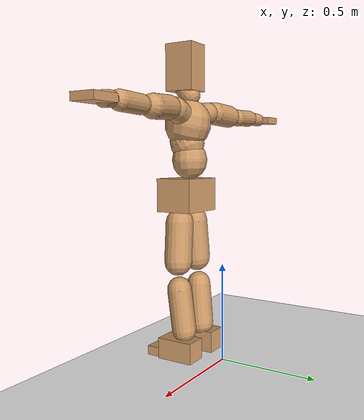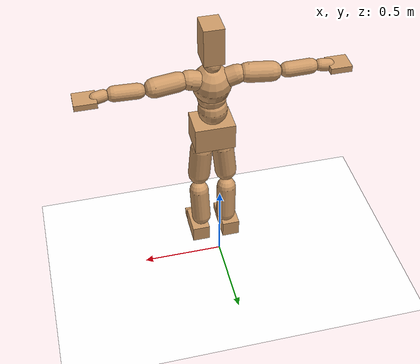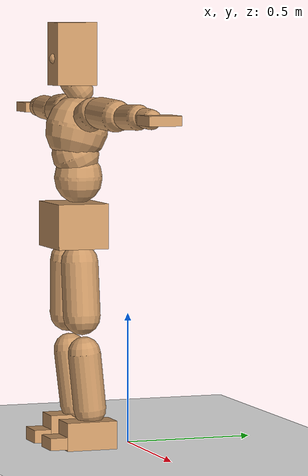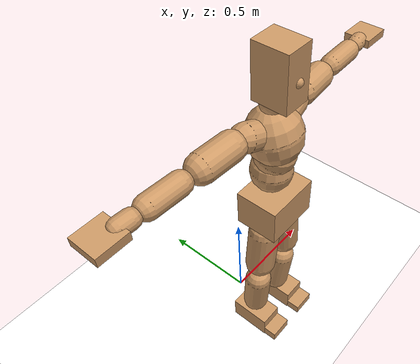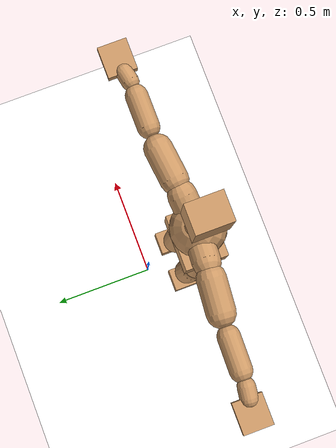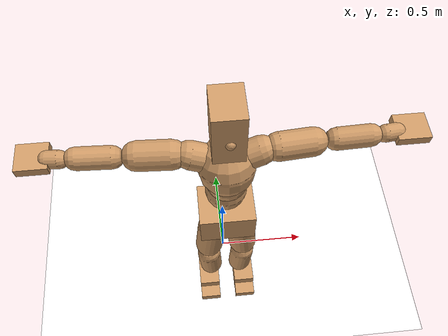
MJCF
<mujoco model="humanoid">
  <option integrator="implicitfast" />

  <visual>
    <global offwidth="1280" offheight="960" />
    <headlight active="1" ambient="0.34 0.34 0.34" diffuse="0.5 0.5 0.5" />
  </visual>

  <default>
    <joint damping="2" stiffness="2" armature="0.01" limited="true" solimplimit="0 .99 .01" />
    <geom condim="1" friction="0.7 0.005 0.0001" solimp=".99 .99 .003" solref="0.015 1" margin="0.001" rgba="0.8 0.6 .4 1" />
    <default class="smplcontact">
      <geom condim="3" friction="1. 0.005 0.0001" solref="0.015 1" solimp="0.98 0.98 0.001" priority="1" />
    </default>
    <default class="stiff_medium">
      <joint stiffness="10" />
    </default>
    <default class="stiff_medium_higher">
      <joint stiffness="50" />
    </default>
    <default class="stiff_high">
      <joint stiffness="100" />
    </default>
  </default>

  <asset>
    <texture type="skybox" builtin="gradient" rgb1="0.99 0.99 0.99" rgb2="0.608 0.828 0.892" width="100" />
    <texture builtin="flat" height="1278" mark="cross" markrgb="1 1 1" name="texgeom" random="0.01" rgb1="0.8 0.6 0.4" rgb2="0.8 0.6 0.4" type="cube" width="127" />
    <texture name="texplane" type="2d" builtin="checker" markrgb="1 1 1" rgb1="0.756 0.772 0.76" rgb2="0.6 0.6 0.6" width="100" height="100" />
    <material name="MatPlane" reflectance="0.5" texture="texplane" texrepeat="1 1" texuniform="true" />
    <material name="geom" texture="texgeom" texuniform="true" />
  </asset>

  <worldbody>
    <light name="tracking_light" pos="0 0 7" dir="0 0 -1" directional="true" cutoff="100" exponent="1" diffuse="1 1 1" specular="0.1 0.1 0.1" mode="trackcom" />
    <camera name="back" pos="0 3 2.4" xyaxes="-1 0 0 0 -1 2" mode="trackcom" />
    <camera name="side" pos="-3 0 2.4" xyaxes="0 -1 0 1 0 2" mode="trackcom" />
    <camera name="front_side" pos="-2.8 -2.8 0.8" xyaxes="0.5 -0.5 0 0.1 0.1 1" mode="trackcom" />
    <geom condim="3" name="floor" pos="0 0 0" rgba="1 1 1 1" size="100 100 .2" type="plane" material="MatPlane" />
    <body name="Pelvis" pos="-0.0018 -0.2233 0.860787" euler="90 0 0">
      <site name="Pelvis" size="0.01" />
      <freejoint name="Pelvis" />
      <geom type="box" pos="-0.0000 -0.0121 -0.0055" size="0.126944 0.0857375 0.0985625" quat="1.0000 0.0000 0.0000 0.0000" density="3165.830099" name="Pelvis" />
      <body name="L_Hip" pos="0.0629809 -0.0828267 -0.00616216">
        <joint name="L_Hip_x" type="hinge" pos="0 0 0" axis="1 0 0" stiffness="11.995178522727272" range="-160.0 22.92" class="stiff_medium" damping="17.430703691887974" armature="0.011257465030404834"/>
        <joint name="L_Hip_y" type="hinge" pos="0 0 0" axis="0 1 0" stiffness="12.049602727272726" range="-70.0 70.0" class="stiff_medium" damping="13.515289728835151" armature="0.015159259652679058"/>
        <joint name="L_Hip_z" type="hinge" pos="0 0 0" axis="0 0 1" stiffness="12.038328636363635" range="-28.65 90.0" class="stiff_medium" damping="11.63825229116524" armature="0.011251471901478795"/>
        <geom type="capsule" density="2040.816327" fromto="0.00625278 -0.067965 -0.00081558 0.0248299 -0.272041 -0.00326232" size="0.0711063" name="L_Hip" />
        <body name="L_Knee" pos="0.0310827 -0.340006 -0.0040779">
          <joint name="L_Knee_x" type="hinge" pos="0 0 0" axis="1 0 0" range="-5.16 171.89" damping="9.673337972976684" armature="0.011821301127185269" stiffness="2.473645522727273"/>
          <joint name="L_Knee_y" type="hinge" pos="0 0 0" axis="0 1 0" range="-4.58 6.88" damping="11.112441772459476" armature="0.015897338952544162" stiffness="2.4274180909090908"/>
          <joint name="L_Knee_z" type="hinge" pos="0 0 0" axis="0 0 1" range="-6.88 4.58" damping="9.685130975623936" armature="0.01179053693243861" stiffness="2.4861506136363634"/>
          <geom type="capsule" density="1234.567901" fromto="-0.00244674 -0.0721335 -0.00788394 -0.00987758 -0.288534 -0.031717" size="0.0625504" name="L_Knee" />
          <body name="L_Ankle" pos="-0.0123243 -0.360668 -0.0396009">
            <joint name="L_Ankle_x" type="hinge" pos="0 0 0" axis="1 0 0" range="-45.84 45.84" class="stiff_medium" damping="8.817713135362855" armature="0.015420084382844266" stiffness="14.006276022727274"/>
            <joint name="L_Ankle_y" type="hinge" pos="0 0 0" axis="0 1 0" range="-74.48 22.92" class="stiff_medium" damping="4.436645862224495" armature="0.015615081444014472" stiffness="14.00627875"/>
            <joint name="L_Ankle_z" type="hinge" pos="0 0 0" axis="0 0 1" range="-4.58 4.58" class="stiff_medium" damping="9.228883683598873" armature="0.016891681807180016" stiffness="14.006284772727273"/>
            <geom type="box" pos="0.0211145 -0.0216582 0.02193" size="0.0558445 0.0536477 0.098277" quat="1.0000 0.0000 0.0000 0.0000" density="449.071558" name="L_Ankle" class="smplcontact" />
            <body name="L_Toe" pos="0.0239237 -0.050566 0.10811">
              <joint name="L_Toe_x" type="hinge" pos="0 0 0" axis="1 0 0" range="-91.67 22.92" armature="0.01763187678403287" damping="3.1429738998598484" stiffness="2.801257363636364"/>
              <joint name="L_Toe_y" type="hinge" pos="0 0 0" axis="0 1 0" range="-4.58 4.58" armature="0.018526938829720452" damping="3.2217611931280334" stiffness="2.8012574772727277"/>
              <joint name="L_Toe_z" type="hinge" pos="0 0 0" axis="0 0 1" range="-4.58 4.58" armature="0.0203366935619891" damping="3.3754503561471756" stiffness="2.8012580000000002"/>
              <geom type="box" pos="-0.0027186 0.0049841 0.0224738" size="0.0552664 0.023124 0.0573475" quat="1.0000 0.0000 0.0000 0.0000" density="423.206892" name="L_Toe" class="smplcontact" />
            </body>
          </body>
        </body>
      </body>
      <body name="R_Hip" pos="-0.0613497 -0.0820111 -0.00389666">
        <joint name="R_Hip_x" type="hinge" pos="0 0 0" axis="1 0 0" stiffness="11.995178522727272" range="-160.0 22.92" class="stiff_medium" damping="17.430703691887974" armature="0.011257465030404834"/>
        <joint name="R_Hip_y" type="hinge" pos="0 0 0" axis="0 1 0" stiffness="12.049602727272726" range="-70.0 70.0" class="stiff_medium" damping="13.515289728835151" armature="0.015159259652679058"/>
        <joint name="R_Hip_z" type="hinge" pos="0 0 0" axis="0 0 1" stiffness="12.038328636363635" range="-90.0 28.65" class="stiff_medium" damping="11.63825229116524" armature="0.011251471901478795"/>
        <geom type="capsule" density="2040.816327" fromto="-0.00697774 -0.0693243 -0.00163116 -0.0277297 -0.277388 -0.00643402" size="0.0700657" name="R_Hip" />
        <body name="R_Knee" pos="-0.0347075 -0.346712 -0.00806518">
          <joint name="R_Knee_x" type="hinge" pos="0 0 0" axis="1 0 0" range="-5.16 171.89" damping="9.673337972976684" armature="0.011821301127185269" stiffness="2.473645522727273"/>
          <joint name="R_Knee_y" type="hinge" pos="0 0 0" axis="0 1 0" range="-6.88 4.58" damping="11.112441772459476" armature="0.015897338952544162" stiffness="2.4274180909090908"/>
          <joint name="R_Knee_z" type="hinge" pos="0 0 0" axis="0 0 1" range="-4.58 6.88" damping="9.685130975623936" armature="0.01179053693243861" stiffness="2.4861506136363634"/>
          <geom type="capsule" density="1234.567901" fromto="0.00289984 -0.0722241 -0.0077027 0.0114181 -0.288806 -0.0306296" size="0.0625504" name="R_Knee" />
          <body name="R_Ankle" pos="0.014318 -0.36103 -0.0383323">
            <joint name="R_Ankle_x" type="hinge" pos="0 0 0" axis="1 0 0" range="-45.84 45.84" class="stiff_medium" damping="8.817713135362855" armature="0.015420084382844266" stiffness="14.006276022727274"/>
            <joint name="R_Ankle_y" type="hinge" pos="0 0 0" axis="0 1 0" range="-22.92 74.48" class="stiff_medium" damping="4.436645862224495" armature="0.015615081444014472" stiffness="14.00627875"/>
            <joint name="R_Ankle_z" type="hinge" pos="0 0 0" axis="0 0 1" range="-4.58 4.58" class="stiff_medium" damping="9.228883683598873" armature="0.016891681807180016" stiffness="14.006284772727273"/>
            <geom type="box" pos="-0.0192114 -0.0157679 0.0231987" size="0.0558445 0.0552664 0.100011" quat="1.0000 0.0000 0.0000 0.0000" density="434.700981" name="R_Ankle" class="smplcontact" />
            <body name="R_Toe" pos="-0.0230175 -0.0435882 0.111734">
              <joint name="R_Toe_x" type="hinge" pos="0 0 0" axis="1 0 0" range="-91.67 22.92" armature="0.01763187678403287" damping="3.1429738998598484" stiffness="2.801257363636364"/>
              <joint name="R_Toe_y" type="hinge" pos="0 0 0" axis="0 1 0" range="-4.58 4.58" armature="0.018526938829720452" damping="3.2217611931280334" stiffness="2.8012574772727277"/>
              <joint name="R_Toe_z" type="hinge" pos="0 0 0" axis="0 0 1" range="-4.58 4.58" armature="0.0203366935619891" damping="3.3754503561471756" stiffness="2.8012580000000002"/>
              <geom type="box" pos="0.00380604 0.0040779 0.0205707" size="0.055382 0.0249739 0.0570007" quat="1.0000 0.0000 0.0000 0.0000" density="407.384095" name="R_Toe" class="smplcontact" />
            </body>
          </body>
        </body>
      </body>
      <body name="Torso" pos="-0.002375 0.10355 -0.025365">
        <joint name="Torso_x" type="hinge" pos="0 0 0" axis="1 0 0" range="-25.78 57.3" class="stiff_medium" damping="19.055014618695633" armature="0.012211228042330711" stiffness="13.215290454545453"/>
        <joint name="Torso_y" type="hinge" pos="0 0 0" axis="0 1 0" range="-57.3 57.3" class="stiff_high" damping="25.3074599233941" armature="0.012136952361086707" stiffness="131.92511363636365"/>
        <joint name="Torso_z" type="hinge" pos="0 0 0" axis="0 0 1" range="-34.38 34.38" class="stiff_high" damping="25.515753611919546" armature="0.012047413355466868" stiffness="135.10237906976747"/>
        <geom type="capsule" density="2040.816327" fromto="0.002375 0.05776 0.000475 0.00285 0.070585 0.00057" size="0.0913187" name="Torso" />
        <body name="Spine" pos="0.005225 0.12844 0.001045">
          <joint name="Spine_x" type="hinge" pos="0 0 0" axis="1 0 0" stiffness="12.887050227272729" range="-25.78 57.3" class="stiff_medium" damping="18.527499025355386" armature="0.011838523999096564"/>
          <joint name="Spine_y" type="hinge" pos="0 0 0" axis="0 1 0" stiffness="12.966226363636364" range="-57.3 57.3" class="stiff_high" damping="10.007072671823913" armature="0.012067589656907945"/>
          <joint name="Spine_z" type="hinge" pos="0 0 0" axis="0 0 1" stiffness="25.607981363636366" range="-34.38 34.38" class="stiff_high" damping="14.729231208120911" armature="0.011766635961697285"/>
          <geom type="capsule" density="2040.816327" fromto="0.000665 0.02261 0.01083 0.00076 0.027645 0.0133" size="0.0896562" name="Spine" />
          <body name="Chest" pos="0.001425 0.050255 0.02413">
            <joint name="Chest_x" type="hinge" pos="0 0 0" axis="1 0 0" stiffness="12.347488372093023" range="-25.78 57.3" class="stiff_medium" damping="18.012981946156344" armature="0.011679118999380003"/>
            <joint name="Chest_y" type="hinge" pos="0 0 0" axis="0 1 0" stiffness="12.557093023255817" range="-57.3 57.3" class="stiff_high" damping="9.824167285867944" armature="0.012009430482085515"/>
            <joint name="Chest_z" type="hinge" pos="0 0 0" axis="0 0 1" stiffness="24.95500318181818" range="-34.38 34.38" class="stiff_high" damping="14.492446632736794" armature="0.011689428895528906"/>
            <geom type="capsule" density="2040.816327" fromto="-0.000855 0.06479 -0.016435 -0.00095 0.079135 -0.02014" size="0.118987" name="Chest" />
            <body name="Neck" pos="-0.00266 0.203205 -0.040755">
              <joint name="Neck_x" type="hinge" pos="0 0 0" axis="1 0 0" range="-28.65 57.3" class="stiff_medium_higher" damping="11.201379205998608" armature="0.01118289578014017" stiffness="56.099465909090895"/>
              <joint name="Neck_y" type="hinge" pos="0 0 0" axis="0 1 0" range="-40.11 40.11" class="stiff_medium_higher" damping="11.46169423508354" armature="0.011754469901036717" stiffness="55.88105454545453"/>
              <joint name="Neck_z" type="hinge" pos="0 0 0" axis="0 0 1" range="-40.11 40.11" class="stiff_medium_higher" damping="11.125035767322531" armature="0.0111687831172576" stiffness="55.40729886363637"/>
              <geom type="capsule" density="1000" fromto="0.00095 0.01235 0.009785 0.003895 0.0494 0.039045" size="0.051775" name="Neck" />
              <body name="Head" pos="0.0052 0.065 0.0513">
                <joint name="Head_x" type="hinge" pos="0 0 0" axis="1 0 0" range="-28.65 57.3" class="stiff_medium_higher" damping="2.2240760816253475" armature="0.01127748953727878" stiffness="54.827300000000015"/>
                <joint name="Head_y" type="hinge" pos="0 0 0" axis="0 1 0" range="-40.11 40.11" class="stiff_medium_higher" damping="2.2584074581295686" armature="0.011628340824131542" stiffness="54.827300000000015"/>
                <joint name="Head_z" type="hinge" pos="0 0 0" axis="0 0 1" range="-40.11 40.11" class="stiff_medium_higher" damping="2.2223622939922807" armature="0.01126011623260363" stiffness="54.827300000000015"/>
                <geom type="box" pos="-0.0042 0.0876 -0.0116" size="0.0624907 0.119 0.0783712" quat="1.0000 0.0000 0.0000 0.0000" density="1018.069894" name="Head" />
                <geom type="capsule" name="nose" size="0.020624 0.010312" pos="0 0.07 0.05" quat="1 0 0 0" mass="0" contype="0" conaffinity="0" />
              </body>
            </body>
            <body name="L_Thorax" pos="0.07289 0.112573 -0.0315425">
              <joint name="L_Thorax_x" type="hinge" pos="0 0 0" axis="1 0 0" range="-10.89 4.58" class="stiff_medium_higher" damping="27.054369581740158" armature="0.014575339633565006" stiffness="62.77202897727272"/>
              <joint name="L_Thorax_y" type="hinge" pos="0 0 0" axis="0 1 0" range="-28.65 17.19" class="stiff_medium_higher" damping="24.271968208894986" armature="0.01180027792084901" stiffness="62.406203977272725"/>
              <joint name="L_Thorax_z" type="hinge" pos="0 0 0" axis="0 0 1" range="-31.51 40.11" class="stiff_medium_higher" damping="24.270686925760245" armature="0.011797761518312697" stiffness="62.41292500000001"/>
              <geom type="capsule" density="1000" fromto="0.016835 0.0056425 -0.001665 0.06734 0.02257 -0.0065675" size="0.060238" name="L_Thorax" />
              <body name="L_Shoulder" pos="0.084175 0.0282125 -0.0082325">
                <joint name="L_Shoulder_x" type="hinge" pos="0 0 0" axis="1 0 0" range="-97.4 97.4" class="stiff_medium" damping="8.41326911715896" armature="0.015624145007319937" stiffness="12.584350340909092"/>
                <joint name="L_Shoulder_y" type="hinge" pos="0 0 0" axis="0 1 0" range="-108.86 80.21" class="stiff_medium" damping="7.322890347845428" armature="0.011883710255236895" stiffness="12.534600795454544"/>
                <joint name="L_Shoulder_z" type="hinge" pos="0 0 0" axis="0 0 1" range="-97.4 85.94" class="stiff_medium" damping="7.315278086767904" armature="0.011880299665888546" stiffness="12.512145454545456"/>
                <geom type="capsule" density="1000" fromto="0.0480075 -0.002405 -0.0050875 0.192123 -0.009435 -0.02035" size="0.0597755" name="L_Shoulder" />
                <body name="L_Elbow" pos="0.24013 -0.01184 -0.0254375">
                  <joint name="L_Elbow_x" type="hinge" pos="0 0 0" axis="1 0 0" range="-17.19 4.58" damping="7.461477678299554" armature="0.017379169974274435" stiffness="2.562775977272727"/>
                  <joint name="L_Elbow_y" type="hinge" pos="0 0 0" axis="0 1 0" range="-180.0 17.19" damping="6.275351879824708" armature="0.012293712902437684" stiffness="2.5626133636363635"/>
                  <joint name="L_Elbow_z" type="hinge" pos="0 0 0" axis="0 0 1" range="-100.84 4.58" damping="6.271855113209329" armature="0.0122758069734083" stiffness="2.563492022727273"/>
                  <geom type="capsule" density="1000" fromto="0.046065 0.001665 -0.000185 0.184445 0.00666 -0.0008325" size="0.0468261" name="L_Elbow" />
                  <body name="L_Wrist" pos="0.23051 0.008325 -0.00111">
                    <joint name="L_Wrist_x" type="hinge" pos="0 0 0" axis="1 0 0" range="-180.0 22.92" armature="0.018069437897334072" damping="3.1570707080454494" stiffness="2.757998204545455"/>
                    <joint name="L_Wrist_y" type="hinge" pos="0 0 0" axis="0 1 0" range="-17.19 17.19" armature="0.013828831720665102" damping="2.752803030787875" stiffness="2.7399004772727276"/>
                    <joint name="L_Wrist_z" type="hinge" pos="0 0 0" axis="0 0 1" range="-22.92 22.92" armature="0.013587860676958932" damping="2.7319767890589457" stiffness="2.7464577954545453"/>
                    <geom type="capsule" density="1000" fromto="0.01554 -0.00148 -0.002775 0.06216 -0.0060125 -0.0111" size="0.0367672" name="L_Wrist" class="smplcontact" />
                    <body name="L_Hand" pos="0.0777 -0.007585 -0.0137825">
                      <joint name="L_Hand_x" type="hinge" pos="0 0 0" axis="1 0 0" range="-17.19 17.19" armature="0.020337688890399937" damping="3.410370063390925" stiffness="2.859377"/>
                      <joint name="L_Hand_y" type="hinge" pos="0 0 0" axis="0 1 0" range="-51.57 51.57" armature="0.016743300409582766" damping="3.0943628777262546" stiffness="2.859377"/>
                      <joint name="L_Hand_z" type="hinge" pos="0 0 0" axis="0 0 1" range="-91.67 91.67" armature="0.01578517017499381" damping="3.0045216770548775" stiffness="2.859377"/>
                      <geom type="box" pos="0.0456025 0.000925 -0.005365" size="0.0676377 0.018268 0.0622036" quat="1.0000 0.0000 0.0000 0.0000" density="400.552564" name="L_Hand" class="smplcontact" />
                    </body>
                  </body>
                </body>
              </body>
            </body>
            <body name="R_Thorax" pos="-0.075665 0.10989 -0.035705">
              <joint name="R_Thorax_x" type="hinge" pos="0 0 0" axis="1 0 0" range="-10.89 4.58" class="stiff_medium_higher" damping="27.054369581740158" armature="0.014575339633565006" stiffness="62.77202897727272"/>
              <joint name="R_Thorax_y" type="hinge" pos="0 0 0" axis="0 1 0" range="-17.19 28.65" class="stiff_medium_higher" damping="24.271968208894986" armature="0.01180027792084901" stiffness="62.406203977272725"/>
              <joint name="R_Thorax_z" type="hinge" pos="0 0 0" axis="0 0 1" range="-40.11 31.51" class="stiff_medium_higher" damping="24.270686925760245" armature="0.011797761518312697" stiffness="62.41292500000001"/>
              <geom type="capsule" density="1000" fromto="-0.01776 0.0060125 -0.001665 -0.07104 0.02405 -0.0067525" size="0.0590818" name="R_Thorax" />
              <body name="R_Shoulder" pos="-0.0888 0.030155 -0.0084175">
                <joint name="R_Shoulder_x" type="hinge" pos="0 0 0" axis="1 0 0" range="-97.4 97.4" class="stiff_medium" damping="8.41326911715896" armature="0.015624145007319937" stiffness="12.584350340909092"/>
                <joint name="R_Shoulder_y" type="hinge" pos="0 0 0" axis="0 1 0" range="-80.21 108.86" class="stiff_medium" damping="7.322890347845428" armature="0.011883710255236895" stiffness="12.534600795454544"/>
                <joint name="R_Shoulder_z" type="hinge" pos="0 0 0" axis="0 0 1" range="-85.94 97.4" class="stiff_medium" damping="7.315278086767904" armature="0.011880299665888546" stiffness="12.512145454545456"/>
                <geom type="capsule" density="1000" fromto="-0.0468975 -0.0024975 -0.0039775 -0.187775 -0.0098975 -0.0158175" size="0.0613942" name="R_Shoulder" />
                <body name="R_Elbow" pos="-0.234673 -0.0123025 -0.019795">
                  <joint name="R_Elbow_x" type="hinge" pos="0 0 0" axis="1 0 0" range="-17.19 4.58" damping="7.461477678299554" armature="0.017379169974274435" stiffness="2.562775977272727"/>
                  <joint name="R_Elbow_y" type="hinge" pos="0 0 0" axis="0 1 0" range="-17.19 180.0" damping="6.275351879824708" armature="0.012293712902437684" stiffness="2.5626133636363635"/>
                  <joint name="R_Elbow_z" type="hinge" pos="0 0 0" axis="0 0 1" range="-4.58 100.84" damping="6.271855113209329" armature="0.0122758069734083" stiffness="2.563492022727273"/>
                  <geom type="capsule" density="1000" fromto="-0.0472675 0.00148 -0.0010175 -0.188885 0.005735 -0.00407" size="0.047173" name="R_Elbow" />
                  <body name="R_Wrist" pos="-0.236153 0.007215 -0.00518">
                    <joint name="R_Wrist_x" type="hinge" pos="0 0 0" axis="1 0 0" range="-180.0 22.92" armature="0.018069437897334072" damping="3.1570707080454494" stiffness="2.757998204545455"/>
                    <joint name="R_Wrist_y" type="hinge" pos="0 0 0" axis="0 1 0" range="-17.19 17.19" armature="0.013828831720665102" damping="2.752803030787875" stiffness="2.7399004772727276"/>
                    <joint name="R_Wrist_z" type="hinge" pos="0 0 0" axis="0 0 1" range="-22.92 22.92" armature="0.013587860676958932" damping="2.7319767890589457" stiffness="2.7464577954545453"/>
                    <geom type="capsule" density="1000" fromto="-0.0156325 -0.00111 -0.0019425 -0.0626225 -0.0045325 -0.0076775" size="0.0376921" name="R_Wrist" class="smplcontact" />
                    <body name="R_Hand" pos="-0.078255 -0.0056425 -0.0095275">
                      <joint name="R_Hand_x" type="hinge" pos="0 0 0" axis="1 0 0" range="-17.19 17.19" armature="0.020337688890399937" damping="3.410370063390925" stiffness="2.859377"/>
                      <joint name="R_Hand_y" type="hinge" pos="0 0 0" axis="0 1 0" range="-51.57 51.57" armature="0.016743300409582766" damping="3.0943628777262546" stiffness="2.859377"/>
                      <joint name="R_Hand_z" type="hinge" pos="0 0 0" axis="0 0 1" range="-91.67 91.67" armature="0.01578517017499381" damping="3.0045216770548775" stiffness="2.859377"/>
                      <geom type="box" pos="-0.042735 -0.0008325 -0.0073075" size="0.0657878 0.0189617 0.0631285" quat="1.0000 0.0000 0.0000 0.0000" density="403.679611" name="R_Hand" class="smplcontact" />
                    </body>
                  </body>
                </body>
              </body>
            </body>
          </body>
        </body>
      </body>
    </body>
  </worldbody>
  <actuator>
    <general name="L_Hip_x" joint="L_Hip_x" biastype="affine" gainprm="344.6575413794053" biasprm="-258.28589422856373 -215.9132134090909 -2.3240938255850634" ctrllimited="true" ctrlrange="-1 1" forcerange="-431.8264268181818 431.8264268181818" />
    <general name="L_Hip_y" joint="L_Hip_y" biastype="affine" gainprm="264.9846038467287" biasprm="0.0 -216.89284909090907 -2.7030579457670303" ctrllimited="true" ctrlrange="-1 1" forcerange="-433.78569818181813 433.78569818181813" />
    <general name="L_Hip_z" joint="L_Hip_z" biastype="affine" gainprm="224.36433090862656" biasprm="116.0113923408701 -216.68991545454543 -2.327650458233048" ctrllimited="true" ctrlrange="-1 1" forcerange="-433.37983090909086 433.37983090909086" />
    <general name="L_Knee_x" joint="L_Knee_x" biastype="affine" gainprm="343.97214696152116" biasprm="323.9224855289151 -222.62809704545455 -2.418334493244171" ctrllimited="true" ctrlrange="-1 1" forcerange="-445.2561940909091 445.2561940909091" />
    <general name="L_Knee_y" joint="L_Knee_y" biastype="affine" gainprm="21.8483720811581" biasprm="4.384926333914802 -218.46762818181816 -2.778110443114869" ctrllimited="true" ctrlrange="-1 1" forcerange="-436.9352563636363 436.9352563636363" />
    <general name="L_Knee_z" joint="L_Knee_z" biastype="affine" gainprm="22.37700372257837" biasprm="-4.491021689522709 -223.7535552272727 -2.421282743905984" ctrllimited="true" ctrlrange="-1 1" forcerange="-447.5071104545454 447.5071104545454" />
    <general name="L_Ankle_x" joint="L_Ankle_x" biastype="affine" gainprm="100.8526157605898" biasprm="0.0 -126.05648420454546 -2.9392377117876185" ctrllimited="true" ctrlrange="-1 1" forcerange="-252.1129684090909 252.1129684090909" />
    <general name="L_Ankle_y" joint="L_Ankle_y" biastype="affine" gainprm="107.1449246051936" biasprm="-56.71860690599365 -126.05650875 -2.957763908149663" ctrllimited="true" ctrlrange="-1 1" forcerange="-252.1130175 252.1130175" />
    <general name="L_Ankle_z" joint="L_Ankle_z" biastype="affine" gainprm="10.076467468253828" biasprm="0.0 -126.05656295454546 -3.0762945611996244" ctrllimited="true" ctrlrange="-1 1" forcerange="-252.1131259090909 252.1131259090909" />
    <general name="L_Toe_x" joint="L_Toe_x" biastype="affine" gainprm="100.8438930840336" biasprm="-60.50281568659839 -100.8452650909091 -1.2571895599439395" ctrllimited="true" ctrlrange="-1 1" forcerange="-201.6905301818182 201.6905301818182" />
    <general name="L_Toe_y" joint="L_Toe_y" biastype="affine" gainprm="8.061175478854747" biasprm="0.0 -100.8452691818182 -1.2887044772512135" ctrllimited="true" ctrlrange="-1 1" forcerange="-201.6905383636364 201.6905383636364" />
    <general name="L_Toe_z" joint="L_Toe_z" biastype="affine" gainprm="8.061176983106428" biasprm="0.0 -100.84528800000001 -1.3501801424588704" ctrllimited="true" ctrlrange="-1 1" forcerange="-201.69057600000002 201.69057600000002" />
    <general name="R_Hip_x" joint="R_Hip_x" biastype="affine" gainprm="344.6575413794053" biasprm="-258.28589422856373 -215.9132134090909 -2.3240938255850634" ctrllimited="true" ctrlrange="-1 1" forcerange="-431.8264268181818 431.8264268181818" />
    <general name="R_Hip_y" joint="R_Hip_y" biastype="affine" gainprm="264.9846038467287" biasprm="0.0 -216.89284909090907 -2.7030579457670303" ctrllimited="true" ctrlrange="-1 1" forcerange="-433.78569818181813 433.78569818181813" />
    <general name="R_Hip_z" joint="R_Hip_z" biastype="affine" gainprm="224.36433090862656" biasprm="-116.0113923408701 -216.68991545454543 -2.327650458233048" ctrllimited="true" ctrlrange="-1 1" forcerange="-433.37983090909086 433.37983090909086" />
    <general name="R_Knee_x" joint="R_Knee_x" biastype="affine" gainprm="343.97214696152116" biasprm="323.9224855289151 -222.62809704545455 -2.418334493244171" ctrllimited="true" ctrlrange="-1 1" forcerange="-445.2561940909091 445.2561940909091" />
    <general name="R_Knee_y" joint="R_Knee_y" biastype="affine" gainprm="21.8483720811581" biasprm="-4.384926333914802 -218.46762818181816 -2.778110443114869" ctrllimited="true" ctrlrange="-1 1" forcerange="-436.9352563636363 436.9352563636363" />
    <general name="R_Knee_z" joint="R_Knee_z" biastype="affine" gainprm="22.37700372257837" biasprm="4.491021689522709 -223.7535552272727 -2.421282743905984" ctrllimited="true" ctrlrange="-1 1" forcerange="-447.5071104545454 447.5071104545454" />
    <general name="R_Ankle_x" joint="R_Ankle_x" biastype="affine" gainprm="100.8526157605898" biasprm="0.0 -126.05648420454546 -2.9392377117876185" ctrllimited="true" ctrlrange="-1 1" forcerange="-252.1129684090909 252.1129684090909" />
    <general name="R_Ankle_y" joint="R_Ankle_y" biastype="affine" gainprm="107.1449246051936" biasprm="56.71860690599365 -126.05650875 -2.957763908149663" ctrllimited="true" ctrlrange="-1 1" forcerange="-252.1130175 252.1130175" />
    <general name="R_Ankle_z" joint="R_Ankle_z" biastype="affine" gainprm="10.076467468253828" biasprm="0.0 -126.05656295454546 -3.0762945611996244" ctrllimited="true" ctrlrange="-1 1" forcerange="-252.1131259090909 252.1131259090909" />
    <general name="R_Toe_x" joint="R_Toe_x" biastype="affine" gainprm="100.8438930840336" biasprm="-60.50281568659839 -100.8452650909091 -1.2571895599439395" ctrllimited="true" ctrlrange="-1 1" forcerange="-201.6905301818182 201.6905301818182" />
    <general name="R_Toe_y" joint="R_Toe_y" biastype="affine" gainprm="8.061175478854747" biasprm="0.0 -100.8452691818182 -1.2887044772512135" ctrllimited="true" ctrlrange="-1 1" forcerange="-201.6905383636364 201.6905383636364" />
    <general name="R_Toe_z" joint="R_Toe_z" biastype="affine" gainprm="8.061176983106428" biasprm="0.0 -100.84528800000001 -1.3501801424588704" ctrllimited="true" ctrlrange="-1 1" forcerange="-201.69057600000002 201.69057600000002" />
    <general name="Torso_x" joint="Torso_x" biastype="affine" gainprm="229.94915303587706" biasprm="87.24118083402556 -317.1669709090909 -5.081337231652169" ctrllimited="true" ctrlrange="-1 1" forcerange="-475.7504563636364 475.7504563636364" />
    <general name="Torso_y" joint="Torso_y" biastype="affine" gainprm="316.643595417535" biasprm="0.0 -316.6202727272728 -5.0614919846788196" ctrllimited="true" ctrlrange="-1 1" forcerange="-474.93040909090917 474.93040909090917" />
    <general name="Torso_z" joint="Torso_z" biastype="affine" gainprm="194.56175649481014" biasprm="0.0 -324.2457097674419 -5.103150722383909" ctrllimited="true" ctrlrange="-1 1" forcerange="-486.36856465116284 486.36856465116284" />
    <general name="Spine_x" joint="Spine_x" biastype="affine" gainprm="224.23769610549186" biasprm="85.0742920226902 -309.2892054545455 -4.940666406761436" ctrllimited="true" ctrlrange="-1 1" forcerange="-463.9338081818183 463.9338081818183" />
    <general name="Spine_y" joint="Spine_y" biastype="affine" gainprm="311.21235537429675" biasprm="0.0 -311.18943272727273 -5.0035363359119565" ctrllimited="true" ctrlrange="-1 1" forcerange="-466.7841490909091 466.7841490909091" />
    <general name="Spine_z" joint="Spine_z" biastype="affine" gainprm="184.3910473191059" biasprm="0.0 -307.2957763636364 -4.909743736040304" ctrllimited="true" ctrlrange="-1 1" forcerange="-460.94366454545457 460.94366454545457" />
    <general name="Chest_x" joint="Chest_x" biastype="affine" gainprm="214.84919329234597" biasprm="81.51235643445767 -296.33972093023255 -4.8034618523083585" ctrllimited="true" ctrlrange="-1 1" forcerange="-444.50958139534885 444.50958139534885" />
    <general name="Chest_y" joint="Chest_y" biastype="affine" gainprm="301.3924319092035" biasprm="0.0 -301.3702325581396 -4.912083642933972" ctrllimited="true" ctrlrange="-1 1" forcerange="-452.0553488372094 452.0553488372094" />
    <general name="Chest_z" joint="Chest_z" biastype="affine" gainprm="179.68925809518234" biasprm="0.0 -299.46003818181816 -4.830815544245598" ctrllimited="true" ctrlrange="-1 1" forcerange="-449.19005727272724 449.19005727272724" />
    <general name="Neck_x" joint="Neck_x" biastype="affine" gainprm="30.29594306789646" biasprm="10.09864768929882 -40.391615454545445 -0.8961103364798886" ctrllimited="true" ctrlrange="-1 1" forcerange="-80.78323090909089 80.78323090909089" />
    <general name="Neck_y" joint="Neck_y" biastype="affine" gainprm="28.16612609416741" biasprm="0.0 -40.23435927272726 -0.9169355388066832" ctrllimited="true" ctrlrange="-1 1" forcerange="-80.46871854545452 80.46871854545452" />
    <general name="Neck_z" joint="Neck_z" biastype="affine" gainprm="27.927335642189366" biasprm="0.0 -39.89325518181818 -0.8900028613858025" ctrllimited="true" ctrlrange="-1 1" forcerange="-79.78651036363637 79.78651036363637" />
    <general name="Head_x" joint="Head_x" biastype="affine" gainprm="19.73928191590036" biasprm="6.579760638633453 -26.317104000000008 -0.8896304326501391" ctrllimited="true" ctrlrange="-1 1" forcerange="-52.634208000000015 52.634208000000015" />
    <general name="Head_y" joint="Head_y" biastype="affine" gainprm="18.423329788173668" biasprm="0.0 -26.317104000000008 -0.9033629832518275" ctrllimited="true" ctrlrange="-1 1" forcerange="-52.634208000000015 52.634208000000015" />
    <general name="Head_z" joint="Head_z" biastype="affine" gainprm="18.423329788173668" biasprm="0.0 -26.317104000000008 -0.8889449175969123" ctrllimited="true" ctrlrange="-1 1" forcerange="-52.634208000000015 52.634208000000015" />
    <general name="L_Thorax_x" joint="L_Thorax_x" biastype="affine" gainprm="20.33832082986179" biasprm="-8.295721036614605 -150.65286954545454 -2.164349566539213" ctrllimited="true" ctrlrange="-1 1" forcerange="-301.30573909090907 301.30573909090907" />
    <general name="L_Thorax_y" joint="L_Thorax_y" biastype="affine" gainprm="59.91436886896702" biasprm="-14.978592217241754 -149.77488954545453 -1.941757456711599" ctrllimited="true" ctrlrange="-1 1" forcerange="-299.54977909090906 299.54977909090906" />
    <general name="L_Thorax_z" joint="L_Thorax_z" biastype="affine" gainprm="93.61974776824944" biasprm="11.24168990235891 -149.79102000000003 -1.9416549540608194" ctrllimited="true" ctrlrange="-1 1" forcerange="-299.58204000000006 299.58204000000006" />
    <general name="L_Shoulder_x" joint="L_Shoulder_x" biastype="affine" gainprm="102.68532030423737" biasprm="0.0 -60.40488163636364 -2.2435384312423894" ctrllimited="true" ctrlrange="-1 1" forcerange="-120.80976327272728 120.80976327272728" />
    <general name="L_Shoulder_y" joint="L_Shoulder_y" biastype="affine" gainprm="99.27085000131858" biasprm="-15.042628933928055 -60.16608381818182 -1.9527707594254478" ctrllimited="true" ctrlrange="-1 1" forcerange="-120.33216763636364 120.33216763636364" />
    <general name="L_Shoulder_z" joint="L_Shoulder_z" biastype="affine" gainprm="96.08987330506943" biasprm="-6.0062722159708635 -60.05829818181819 -1.9507408231381078" ctrllimited="true" ctrlrange="-1 1" forcerange="-120.11659636363638 120.11659636363638" />
    <general name="L_Elbow_x" joint="L_Elbow_x" biastype="affine" gainprm="17.527458444383168" biasprm="-10.152560908758467 -92.25993518181818 -1.1938364285279286" ctrllimited="true" ctrlrange="-1 1" forcerange="-184.51987036363636 184.51987036363636" />
    <general name="L_Elbow_y" joint="L_Elbow_y" biastype="affine" gainprm="158.7515032076899" biasprm="-131.07324021118714 -92.25408109090908 -1.0040563007719532" ctrllimited="true" ctrlrange="-1 1" forcerange="-184.50816218181816 184.50816218181816" />
    <general name="L_Elbow_z" joint="L_Elbow_z" biastype="affine" gainprm="84.89944571808613" biasprm="-77.52248761926553 -92.28571281818184 -1.0034968181134927" ctrllimited="true" ctrlrange="-1 1" forcerange="-184.57142563636367 184.57142563636367" />
    <general name="L_Wrist_x" joint="L_Wrist_x" biastype="affine" gainprm="29.30336232908281" biasprm="-22.683679059000237 -16.54798922727273 -1.2628282832181799" ctrllimited="true" ctrlrange="-1 1" forcerange="-33.09597845454546 33.09597845454546" />
    <general name="L_Wrist_y" joint="L_Wrist_y" biastype="affine" gainprm="4.9321841438841885" biasprm="0.0 -16.439402863636367 -1.1011212123151501" ctrllimited="true" ctrlrange="-1 1" forcerange="-32.878805727272734 32.878805727272734" />
    <general name="L_Wrist_z" joint="L_Wrist_z" biastype="affine" gainprm="6.591984248066137" biasprm="0.0 -16.47874677272727 -1.0927907156235783" ctrllimited="true" ctrlrange="-1 1" forcerange="-32.95749354545454 32.95749354545454" />
    <general name="L_Hand_x" joint="L_Hand_x" biastype="affine" gainprm="5.147257726245996" biasprm="0.0 -17.156261999999998 -1.36414802535637" ctrllimited="true" ctrlrange="-1 1" forcerange="-34.312523999999996 34.312523999999996" />
    <general name="L_Hand_y" joint="L_Hand_y" biastype="affine" gainprm="15.441773178737984" biasprm="0.0 -17.156261999999998 -1.237745151090502" ctrllimited="true" ctrlrange="-1 1" forcerange="-34.312523999999996 34.312523999999996" />
    <general name="L_Hand_z" joint="L_Hand_z" biastype="affine" gainprm="27.449046874052957" biasprm="0.0 -17.156261999999998 -1.201808670821951" ctrllimited="true" ctrlrange="-1 1" forcerange="-34.312523999999996 34.312523999999996" />
    <general name="R_Thorax_x" joint="R_Thorax_x" biastype="affine" gainprm="20.33832082986179" biasprm="-8.295721036614605 -150.65286954545454 -2.164349566539213" ctrllimited="true" ctrlrange="-1 1" forcerange="-301.30573909090907 301.30573909090907" />
    <general name="R_Thorax_y" joint="R_Thorax_y" biastype="affine" gainprm="59.91436886896702" biasprm="14.978592217241745 -149.77488954545453 -1.941757456711599" ctrllimited="true" ctrlrange="-1 1" forcerange="-299.54977909090906 299.54977909090906" />
    <general name="R_Thorax_z" joint="R_Thorax_z" biastype="affine" gainprm="93.61974776824944" biasprm="-11.24168990235891 -149.79102000000003 -1.9416549540608194" ctrllimited="true" ctrlrange="-1 1" forcerange="-299.58204000000006 299.58204000000006" />
    <general name="R_Shoulder_x" joint="R_Shoulder_x" biastype="affine" gainprm="102.68532030423737" biasprm="0.0 -60.40488163636364 -2.2435384312423894" ctrllimited="true" ctrlrange="-1 1" forcerange="-120.80976327272728 120.80976327272728" />
    <general name="R_Shoulder_y" joint="R_Shoulder_y" biastype="affine" gainprm="99.27085000131858" biasprm="15.042628933928055 -60.16608381818182 -1.9527707594254478" ctrllimited="true" ctrlrange="-1 1" forcerange="-120.33216763636364 120.33216763636364" />
    <general name="R_Shoulder_z" joint="R_Shoulder_z" biastype="affine" gainprm="96.08987330506943" biasprm="6.00627221597085 -60.05829818181819 -1.9507408231381078" ctrllimited="true" ctrlrange="-1 1" forcerange="-120.11659636363638 120.11659636363638" />
    <general name="R_Elbow_x" joint="R_Elbow_x" biastype="affine" gainprm="17.527458444383168" biasprm="-10.152560908758467 -92.25993518181818 -1.1938364285279286" ctrllimited="true" ctrlrange="-1 1" forcerange="-184.51987036363636 184.51987036363636" />
    <general name="R_Elbow_y" joint="R_Elbow_y" biastype="affine" gainprm="158.7515032076899" biasprm="131.07324021118714 -92.25408109090908 -1.0040563007719532" ctrllimited="true" ctrlrange="-1 1" forcerange="-184.50816218181816 184.50816218181816" />
    <general name="R_Elbow_z" joint="R_Elbow_z" biastype="affine" gainprm="84.89944571808613" biasprm="77.52248761926552 -92.28571281818184 -1.0034968181134927" ctrllimited="true" ctrlrange="-1 1" forcerange="-184.57142563636367 184.57142563636367" />
    <general name="R_Wrist_x" joint="R_Wrist_x" biastype="affine" gainprm="29.30336232908281" biasprm="-22.683679059000237 -16.54798922727273 -1.2628282832181799" ctrllimited="true" ctrlrange="-1 1" forcerange="-33.09597845454546 33.09597845454546" />
    <general name="R_Wrist_y" joint="R_Wrist_y" biastype="affine" gainprm="4.9321841438841885" biasprm="0.0 -16.439402863636367 -1.1011212123151501" ctrllimited="true" ctrlrange="-1 1" forcerange="-32.878805727272734 32.878805727272734" />
    <general name="R_Wrist_z" joint="R_Wrist_z" biastype="affine" gainprm="6.591984248066137" biasprm="0.0 -16.47874677272727 -1.0927907156235783" ctrllimited="true" ctrlrange="-1 1" forcerange="-32.95749354545454 32.95749354545454" />
    <general name="R_Hand_x" joint="R_Hand_x" biastype="affine" gainprm="5.147257726245996" biasprm="0.0 -17.156261999999998 -1.36414802535637" ctrllimited="true" ctrlrange="-1 1" forcerange="-34.312523999999996 34.312523999999996" />
    <general name="R_Hand_y" joint="R_Hand_y" biastype="affine" gainprm="15.441773178737984" biasprm="0.0 -17.156261999999998 -1.237745151090502" ctrllimited="true" ctrlrange="-1 1" forcerange="-34.312523999999996 34.312523999999996" />
    <general name="R_Hand_z" joint="R_Hand_z" biastype="affine" gainprm="27.449046874052957" biasprm="0.0 -17.156261999999998 -1.201808670821951" ctrllimited="true" ctrlrange="-1 1" forcerange="-34.312523999999996 34.312523999999996" />
  </actuator>
  <contact>
    <exclude body1="Torso" body2="Chest" />
    <exclude body1="Head" body2="Chest" />
    <exclude body1="R_Knee" body2="R_Toe" />
    <exclude body1="R_Knee" body2="L_Ankle" />
    <exclude body1="R_Knee" body2="L_Toe" />
    <exclude body1="L_Knee" body2="L_Toe" />
    <exclude body1="L_Knee" body2="R_Ankle" />
    <exclude body1="L_Knee" body2="R_Toe" />
    <exclude body1="L_Shoulder" body2="Chest" />
    <exclude body1="R_Shoulder" body2="Chest" />
  </contact>
  <sensor>
    <framelinvel name="sensor_Pelvis_framelinvel" objtype="xbody" objname="Pelvis" />
    <framelinvel name="sensor_L_Hip_framelinvel" objtype="xbody" objname="L_Hip" />
    <framelinvel name="sensor_L_Knee_framelinvel" objtype="xbody" objname="L_Knee" />
    <framelinvel name="sensor_L_Ankle_framelinvel" objtype="xbody" objname="L_Ankle" />
    <framelinvel name="sensor_L_Toe_framelinvel" objtype="xbody" objname="L_Toe" />
    <framelinvel name="sensor_R_Hip_framelinvel" objtype="xbody" objname="R_Hip" />
    <framelinvel name="sensor_R_Knee_framelinvel" objtype="xbody" objname="R_Knee" />
    <framelinvel name="sensor_R_Ankle_framelinvel" objtype="xbody" objname="R_Ankle" />
    <framelinvel name="sensor_R_Toe_framelinvel" objtype="xbody" objname="R_Toe" />
    <framelinvel name="sensor_Torso_framelinvel" objtype="xbody" objname="Torso" />
    <framelinvel name="sensor_Spine_framelinvel" objtype="xbody" objname="Spine" />
    <framelinvel name="sensor_Chest_framelinvel" objtype="xbody" objname="Chest" />
    <framelinvel name="sensor_Neck_framelinvel" objtype="xbody" objname="Neck" />
    <framelinvel name="sensor_Head_framelinvel" objtype="xbody" objname="Head" />
    <framelinvel name="sensor_L_Thorax_framelinvel" objtype="xbody" objname="L_Thorax" />
    <framelinvel name="sensor_L_Shoulder_framelinvel" objtype="xbody" objname="L_Shoulder" />
    <framelinvel name="sensor_L_Elbow_framelinvel" objtype="xbody" objname="L_Elbow" />
    <framelinvel name="sensor_L_Wrist_framelinvel" objtype="xbody" objname="L_Wrist" />
    <framelinvel name="sensor_L_Hand_framelinvel" objtype="xbody" objname="L_Hand" />
    <framelinvel name="sensor_R_Thorax_framelinvel" objtype="xbody" objname="R_Thorax" />
    <framelinvel name="sensor_R_Shoulder_framelinvel" objtype="xbody" objname="R_Shoulder" />
    <framelinvel name="sensor_R_Elbow_framelinvel" objtype="xbody" objname="R_Elbow" />
    <framelinvel name="sensor_R_Wrist_framelinvel" objtype="xbody" objname="R_Wrist" />
    <framelinvel name="sensor_R_Hand_framelinvel" objtype="xbody" objname="R_Hand" />
    <frameangvel name="sensor_Pelvis_frameangvel" objtype="xbody" objname="Pelvis" />
    <frameangvel name="sensor_L_Hip_frameangvel" objtype="xbody" objname="L_Hip" />
    <frameangvel name="sensor_L_Knee_frameangvel" objtype="xbody" objname="L_Knee" />
    <frameangvel name="sensor_L_Ankle_frameangvel" objtype="xbody" objname="L_Ankle" />
    <frameangvel name="sensor_L_Toe_frameangvel" objtype="xbody" objname="L_Toe" />
    <frameangvel name="sensor_R_Hip_frameangvel" objtype="xbody" objname="R_Hip" />
    <frameangvel name="sensor_R_Knee_frameangvel" objtype="xbody" objname="R_Knee" />
    <frameangvel name="sensor_R_Ankle_frameangvel" objtype="xbody" objname="R_Ankle" />
    <frameangvel name="sensor_R_Toe_frameangvel" objtype="xbody" objname="R_Toe" />
    <frameangvel name="sensor_Torso_frameangvel" objtype="xbody" objname="Torso" />
    <frameangvel name="sensor_Spine_frameangvel" objtype="xbody" objname="Spine" />
    <frameangvel name="sensor_Chest_frameangvel" objtype="xbody" objname="Chest" />
    <frameangvel name="sensor_Neck_frameangvel" objtype="xbody" objname="Neck" />
    <frameangvel name="sensor_Head_frameangvel" objtype="xbody" objname="Head" />
    <frameangvel name="sensor_L_Thorax_frameangvel" objtype="xbody" objname="L_Thorax" />
    <frameangvel name="sensor_L_Shoulder_frameangvel" objtype="xbody" objname="L_Shoulder" />
    <frameangvel name="sensor_L_Elbow_frameangvel" objtype="xbody" objname="L_Elbow" />
    <frameangvel name="sensor_L_Wrist_frameangvel" objtype="xbody" objname="L_Wrist" />
    <frameangvel name="sensor_L_Hand_frameangvel" objtype="xbody" objname="L_Hand" />
    <frameangvel name="sensor_R_Thorax_frameangvel" objtype="xbody" objname="R_Thorax" />
    <frameangvel name="sensor_R_Shoulder_frameangvel" objtype="xbody" objname="R_Shoulder" />
    <frameangvel name="sensor_R_Elbow_frameangvel" objtype="xbody" objname="R_Elbow" />
    <frameangvel name="sensor_R_Wrist_frameangvel" objtype="xbody" objname="R_Wrist" />
    <frameangvel name="sensor_R_Hand_frameangvel" objtype="xbody" objname="R_Hand" />
    <subtreelinvel name="Chest_subtreelinvel" body="Chest" />
    <gyro name="Pelvis_gyro" site="Pelvis" />
  </sensor>
</mujoco>
